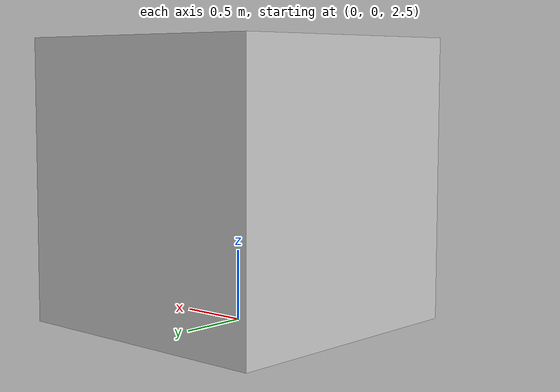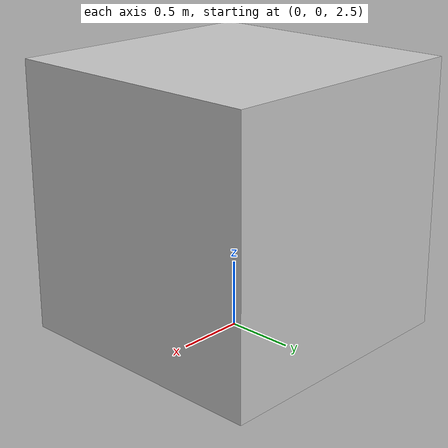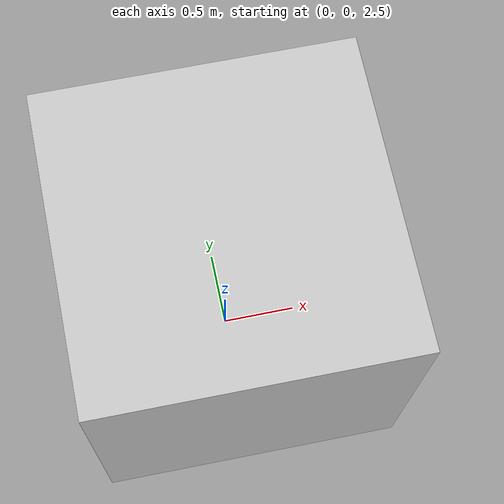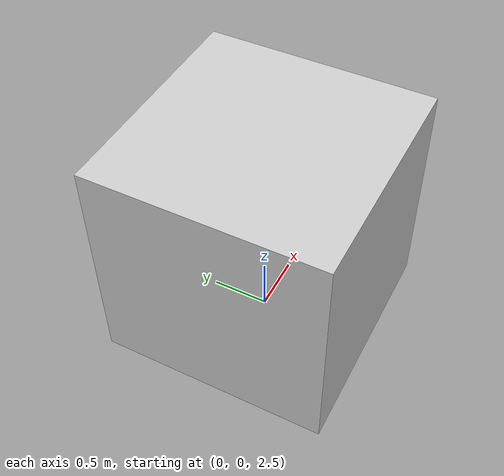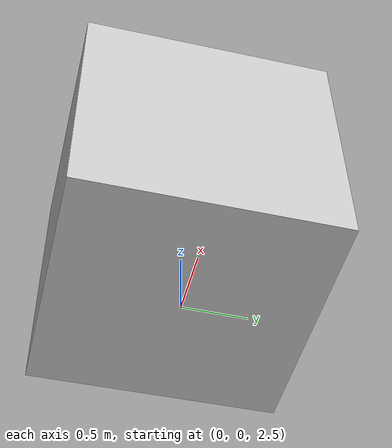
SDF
<?xml version="1.0" ?>
<sdf version="1.7">
    <model name="ground_rock22">
      <static>true</static>
      <pose>0 0 3.5 0 0 0</pose>
      <link name="ground_rock22_link">
        <inertial>
          <inertia>
            <ixx>1</ixx>
            <ixy>0</ixy>
            <ixz>0</ixz>
            <iyy>1</iyy>
            <iyz>0</iyz>
            <izz>1</izz>
          </inertia>
          <mass>1.0</mass>
        </inertial>
        <collision name="ground_rock22collision">
          <geometry>
            <plane>
              <normal>0 0 1</normal>
            </plane>
          </geometry>
        </collision>
        <visual name="ground_rock22visual">
          <geometry>
            <mesh>
              <uri>file:///root/ignition_textures/ground_rock22/meshes/terrain07.dae</uri>
              <scale>1 1 1</scale>
            </mesh>
          </geometry>
          <material>
            <ambient>0.8 0.8 0.8 1</ambient>
            <diffuse>0.8 0.8 0.8 1</diffuse>
            <pbr>
              <metal>
                <albedo_map>file:///root/ignition_textures/ground_rock22/materials/textures/grouduv.jpg</albedo_map>
                <normal_map >file:///root/ignition_textures/ground_rock22/materials/textures/Ground022_4K_Normal.jpg</normal_map>
                <ambient_occlusion_map>file:///root/ignition_textures/ground_rock22/materials/textures/Ground022_4K_AmbientOcclusion.jpg</ambient_occlusion_map>
                <roughness_map>file:///root/ignition_textures/ground_rock22/materials/textures/Ground022_4K_Roughness.jpg</roughness_map>
                <roughness>0.9</roughness>
                <metalness_map>file:///root/ignition_textures/ground_rock22/materials/textures/Ground022_4K_Displacement.jpg</metalness_map>
                <metalness>0.9</metalness>
              </metal>
            </pbr>
            <!-- fallback to classic if no PBR support-->
            <script>
              <uri>file:///root/ignition_textures/ground_rock22/materials/scripts</uri>
              <uri>file:///root/ignition_textures/ground_rock22/materials/textures</uri>
              <name>GroundRock22/Diffuse</name>
            </script>
          </material>
        </visual>
      </link>
    </model>
</sdf>
